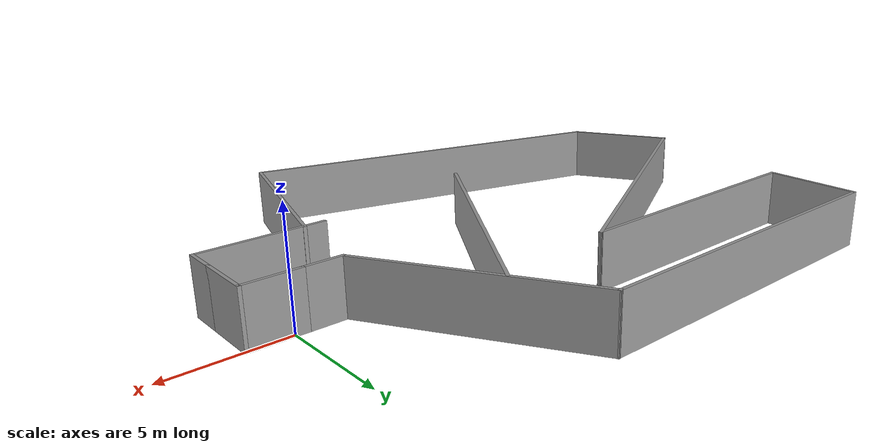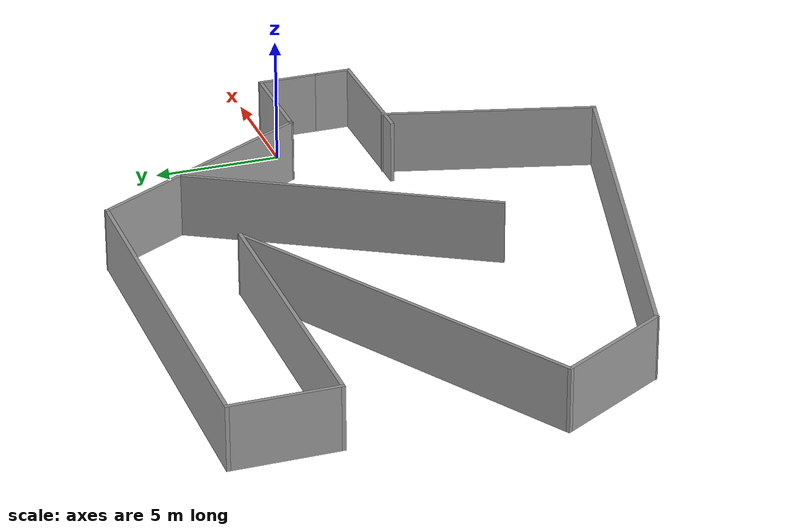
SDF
<?xml version='1.0'?>
<sdf version='1.7'>
  <model name='test_house'>
    <pose>-11.0305 -1.42071 0 0 -0 0</pose>
    <link name='Wall_0'>
      <collision name='Wall_0_Collision'>
        <geometry>
          <box>
            <size>5.5 0.15 2.5</size>
          </box>
        </geometry>
        <pose>0 0 1.25 0 -0 0</pose>
      </collision>
      <visual name='Wall_0_Visual'>
        <pose>0 0 1.25 0 -0 0</pose>
        <geometry>
          <box>
            <size>5.5 0.15 2.5</size>
          </box>
        </geometry>
        <material>
          <script>
            <uri>file://media/materials/scripts/gazebo.material</uri>
            <name>Gazebo/Grey</name>
          </script>
          <ambient>1 1 1 1</ambient>
        </material>
        <meta>
          <layer>0</layer>
        </meta>
      </visual>
      <pose>10.2355 -2.21929 0 0 -0 0</pose>
    </link>
    <link name='Wall_1'>
      <collision name='Wall_1_Collision'>
        <geometry>
          <box>
            <size>1.5 0.15 2.5</size>
          </box>
        </geometry>
        <pose>0 0 1.25 0 -0 0</pose>
      </collision>
      <visual name='Wall_1_Visual'>
        <pose>0 0 1.25 0 -0 0</pose>
        <geometry>
          <box>
            <size>1.5 0.15 2.5</size>
          </box>
        </geometry>
        <material>
          <script>
            <uri>file://media/materials/scripts/gazebo.material</uri>
            <name>Gazebo/Grey</name>
          </script>
          <ambient>1 1 1 1</ambient>
        </material>
        <meta>
          <layer>0</layer>
        </meta>
      </visual>
      <pose>12.9105 -1.54429 0 0 -0 1.5708</pose>
    </link>
    <link name='Wall_15'>
      <collision name='Wall_15_Collision'>
        <geometry>
          <box>
            <size>2.5 0.15 2.5</size>
          </box>
        </geometry>
        <pose>0 0 1.25 0 -0 0</pose>
      </collision>
      <visual name='Wall_15_Visual'>
        <pose>0 0 1.25 0 -0 0</pose>
        <geometry>
          <box>
            <size>2.5 0.15 2.5</size>
          </box>
        </geometry>
        <material>
          <script>
            <uri>file://media/materials/scripts/gazebo.material</uri>
            <name>Gazebo/Grey</name>
          </script>
          <ambient>1 1 1 1</ambient>
        </material>
        <meta>
          <layer>0</layer>
        </meta>
      </visual>
      <pose>11.7355 1.48071 0 0 -0 0</pose>
    </link>
    <link name='Wall_16'>
      <collision name='Wall_16_Collision'>
        <geometry>
          <box>
            <size>2.5 0.15 2.5</size>
          </box>
        </geometry>
        <pose>0 0 1.25 0 -0 0</pose>
      </collision>
      <visual name='Wall_16_Visual'>
        <pose>0 0 1.25 0 -0 0</pose>
        <geometry>
          <box>
            <size>2.5 0.15 2.5</size>
          </box>
        </geometry>
        <material>
          <script>
            <uri>file://media/materials/scripts/gazebo.material</uri>
            <name>Gazebo/Grey</name>
          </script>
          <ambient>1 1 1 1</ambient>
        </material>
        <meta>
          <layer>0</layer>
        </meta>
      </visual>
      <pose>12.9105 0.305712 0 0 -0 -1.5708</pose>
    </link>
    <link name='Wall_18'>
      <collision name='Wall_18_Collision'>
        <geometry>
          <box>
            <size>10.25 0.15 2.5</size>
          </box>
        </geometry>
        <pose>0 0 1.25 0 -0 0</pose>
      </collision>
      <visual name='Wall_18_Visual'>
        <pose>0 0 1.25 0 -0 0</pose>
        <geometry>
          <box>
            <size>10.25 0.15 2.5</size>
          </box>
        </geometry>
        <material>
          <script>
            <uri>file://media/materials/scripts/gazebo.material</uri>
            <name>Gazebo/Grey</name>
          </script>
          <ambient>1 1 1 1</ambient>
        </material>
        <meta>
          <layer>0</layer>
        </meta>
      </visual>
      <pose>6.43547 5.85414 0 0 -0 2.0944</pose>
    </link>
    <link name='Wall_19'>
      <collision name='Wall_19_Collision'>
        <geometry>
          <box>
            <size>15.5 0.15 2.5</size>
          </box>
        </geometry>
        <pose>0 0 1.25 0 -0 0</pose>
      </collision>
      <visual name='Wall_19_Visual'>
        <pose>0 0 1.25 0 -0 0</pose>
        <geometry>
          <box>
            <size>15.5 0.15 2.5</size>
          </box>
        </geometry>
        <material>
          <script>
            <uri>file://media/materials/scripts/gazebo.material</uri>
            <name>Gazebo/Grey</name>
          </script>
          <ambient>1 1 1 1</ambient>
        </material>
        <meta>
          <layer>0</layer>
        </meta>
      </visual>
      <pose>-3.76453 10.2276 0 0 -0 3.14159</pose>
    </link>
    <link name='Wall_21'>
      <collision name='Wall_21_Collision'>
        <geometry>
          <box>
            <size>4.25 0.15 2.5</size>
          </box>
        </geometry>
        <pose>0 0 1.25 0 -0 0</pose>
      </collision>
      <visual name='Wall_21_Visual'>
        <pose>0 0 1.25 0 -0 0</pose>
        <geometry>
          <box>
            <size>4.25 0.15 2.5</size>
          </box>
        </geometry>
        <material>
          <script>
            <uri>file://media/materials/scripts/gazebo.material</uri>
            <name>Gazebo/Grey</name>
          </script>
          <ambient>1 1 1 1</ambient>
        </material>
        <meta>
          <layer>0</layer>
        </meta>
      </visual>
      <pose>-11.4395 8.17757 0 0 -0 -1.5708</pose>
    </link>
    <link name='Wall_22'>
      <collision name='Wall_22_Collision'>
        <geometry>
          <box>
            <size>12 0.15 2.5</size>
          </box>
        </geometry>
        <pose>0 0 1.25 0 -0 0</pose>
      </collision>
      <visual name='Wall_22_Visual'>
        <pose>0 0 1.25 0 -0 0</pose>
        <geometry>
          <box>
            <size>12 0.15 2.5</size>
          </box>
        </geometry>
        <material>
          <script>
            <uri>file://media/materials/scripts/gazebo.material</uri>
            <name>Gazebo/Grey</name>
          </script>
          <ambient>1 1 1 1</ambient>
        </material>
        <meta>
          <layer>0</layer>
        </meta>
      </visual>
      <pose>-5.51453 6.12757 0 0 -0 0</pose>
    </link>
    <link name='Wall_23'>
      <collision name='Wall_23_Collision'>
        <geometry>
          <box>
            <size>15.5 0.15 2.5</size>
          </box>
        </geometry>
        <pose>0 0 1.25 0 -0 0</pose>
      </collision>
      <visual name='Wall_23_Visual'>
        <pose>0 0 1.25 0 -0 0</pose>
        <geometry>
          <box>
            <size>15.5 0.15 2.5</size>
          </box>
        </geometry>
        <material>
          <script>
            <uri>file://media/materials/scripts/gazebo.material</uri>
            <name>Gazebo/Grey</name>
          </script>
          <ambient>1 1 1 1</ambient>
        </material>
        <meta>
          <layer>0</layer>
        </meta>
      </visual>
      <pose>-6.23627 2.29007 0 0 -0 -2.61799</pose>
    </link>
    <link name='Wall_24'>
      <collision name='Wall_24_Collision'>
        <geometry>
          <box>
            <size>5 0.15 2.5</size>
          </box>
        </geometry>
        <pose>0 0 1.25 0 -0 0</pose>
      </collision>
      <visual name='Wall_24_Visual'>
        <pose>0 0 1.25 0 -0 0</pose>
        <geometry>
          <box>
            <size>5 0.15 2.5</size>
          </box>
        </geometry>
        <material>
          <script>
            <uri>file://media/materials/scripts/gazebo.material</uri>
            <name>Gazebo/Grey</name>
          </script>
          <ambient>1 1 1 1</ambient>
        </material>
        <meta>
          <layer>0</layer>
        </meta>
      </visual>
      <pose>-11.6705 -3.64754 0 0 -0 -1.0472</pose>
    </link>
    <link name='Wall_25'>
      <collision name='Wall_25_Collision'>
        <geometry>
          <box>
            <size>17.5 0.15 2.5</size>
          </box>
        </geometry>
        <pose>0 0 1.25 0 -0 0</pose>
      </collision>
      <visual name='Wall_25_Visual'>
        <pose>0 0 1.25 0 -0 0</pose>
        <geometry>
          <box>
            <size>17.5 0.15 2.5</size>
          </box>
        </geometry>
        <material>
          <script>
            <uri>file://media/materials/scripts/gazebo.material</uri>
            <name>Gazebo/Grey</name>
          </script>
          <ambient>1 1 1 1</ambient>
        </material>
        <meta>
          <layer>0</layer>
        </meta>
      </visual>
      <pose>-2.07861 -7.99291 0 0 -0 -0.261799</pose>
    </link>
    <link name='Wall_26'>
      <collision name='Wall_26_Collision'>
        <geometry>
          <box>
            <size>8.5 0.15 2.5</size>
          </box>
        </geometry>
        <pose>0 0 1.25 0 -0 0</pose>
      </collision>
      <visual name='Wall_26_Visual'>
        <pose>0 0 1.25 0 -0 0</pose>
        <geometry>
          <box>
            <size>8.5 0.15 2.5</size>
          </box>
        </geometry>
        <material>
          <script>
            <uri>file://media/materials/scripts/gazebo.material</uri>
            <name>Gazebo/Grey</name>
          </script>
          <ambient>1 1 1 1</ambient>
        </material>
        <meta>
          <layer>0</layer>
        </meta>
      </visual>
      <pose>7.38136 -6.20542 0 0 -0 1.309</pose>
    </link>
    <link name='Wall_29'>
      <collision name='Wall_29_Collision'>
        <geometry>
          <box>
            <size>12.5 0.15 2.5</size>
          </box>
        </geometry>
        <pose>0 0 1.25 0 -0 0</pose>
      </collision>
      <visual name='Wall_29_Visual'>
        <pose>0 0 1.25 0 -0 0</pose>
        <geometry>
          <box>
            <size>12.5 0.15 2.5</size>
          </box>
        </geometry>
        <material>
          <script>
            <uri>file://media/materials/scripts/gazebo.material</uri>
            <name>Gazebo/Grey</name>
          </script>
          <ambient>1 1 1 1</ambient>
        </material>
        <meta>
          <layer>0</layer>
        </meta>
      </visual>
      <pose>2.73534 1.48578 0 0 -0 -2.0944</pose>
    </link>
    <link name='Wall_4'>
      <collision name='Wall_4_Collision'>
        <geometry>
          <box>
            <size>1.75 0.15 2.5</size>
          </box>
        </geometry>
        <pose>0 0 1.25 0 -0 0</pose>
      </collision>
      <visual name='Wall_4_Visual'>
        <pose>0 0 1.25 0 -0 0</pose>
        <geometry>
          <box>
            <size>1.75 0.15 2.5</size>
          </box>
        </geometry>
        <material>
          <script>
            <uri>file://media/materials/scripts/gazebo.material</uri>
            <name>Gazebo/Grey</name>
          </script>
          <ambient>1 1 1 1</ambient>
        </material>
        <meta>
          <layer>0</layer>
        </meta>
      </visual>
      <pose>9.76047 1.48071 0 0 -0 3.14159</pose>
    </link>
    <static>1</static>
  </model>
</sdf>
